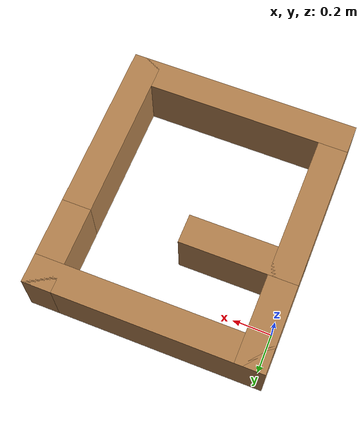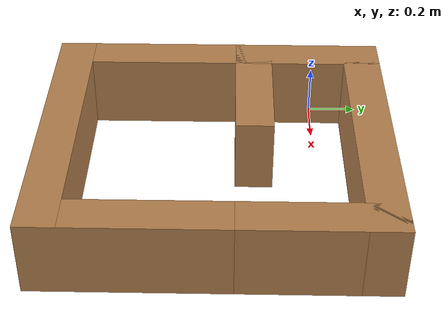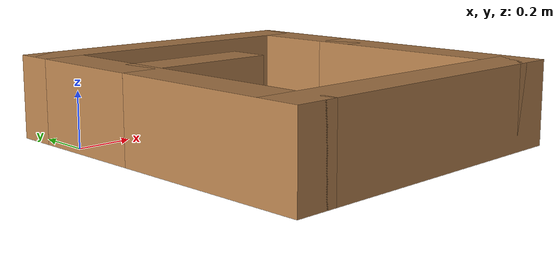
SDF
<?xml version='1.0'?>
<sdf version='1.7'>
  <model name='test3.world'>
    <pose>0.555 -0.4 0 0 -0 0</pose>
    <link name='Wall_1'>
      <collision name='Wall_1_Collision'>
        <geometry>
          <box>
            <size>1.2 0.15 0.3</size>
          </box>
        </geometry>
        <pose>0 0 0.15 0 -0 0</pose>
      </collision>
      <visual name='Wall_1_Visual'>
        <pose>0 0 0.15 0 -0 0</pose>
        <geometry>
          <box>
            <size>1.2 0.15 0.3</size>
          </box>
        </geometry>
        <material>
          <script>
            <uri>file://media/materials/scripts/gazebo.material</uri>
            <name>Gazebo/Wood</name>
          </script>
          <ambient>0.996078 0.47451 0.0196078 1</ambient>
        </material>
        <meta>
          <layer>0</layer>
        </meta>
      </visual>
      <pose>-0 -0.6 0 0 -0 0</pose>
    </link>
    <link name='Wall_11'>
      <collision name='Wall_11_Collision'>
        <geometry>
          <box>
            <size>0.9 0.15 0.3</size>
          </box>
        </geometry>
        <pose>0 0 0.15 0 -0 0</pose>
      </collision>
      <visual name='Wall_11_Visual'>
        <pose>0 0 0.15 0 -0 0</pose>
        <geometry>
          <box>
            <size>0.9 0.15 0.3</size>
          </box>
        </geometry>
        <material>
          <script>
            <uri>file://media/materials/scripts/gazebo.material</uri>
            <name>Gazebo/Wood</name>
          </script>
          <ambient>0.996078 0.47451 0.0196078 1</ambient>
        </material>
        <meta>
          <layer>0</layer>
        </meta>
      </visual>
      <pose>-0.525 -0.225 0 0 -0 -1.5708</pose>
    </link>
    <link name='Wall_13'>
      <collision name='Wall_13_Collision'>
        <geometry>
          <box>
            <size>0.6 0.15 0.3</size>
          </box>
        </geometry>
        <pose>0 0 0.15 0 -0 0</pose>
      </collision>
      <visual name='Wall_13_Visual'>
        <pose>0 0 0.15 0 -0 0</pose>
        <geometry>
          <box>
            <size>0.6 0.15 0.3</size>
          </box>
        </geometry>
        <material>
          <script>
            <uri>file://media/materials/scripts/gazebo.material</uri>
            <name>Gazebo/Wood</name>
          </script>
          <ambient>1 1 1 1</ambient>
        </material>
        <meta>
          <layer>0</layer>
        </meta>
      </visual>
      <pose>-0.3 0.15 0 0 -0 0</pose>
    </link>
    <link name='Wall_3'>
      <collision name='Wall_3_Collision'>
        <geometry>
          <box>
            <size>0.9 0.15 0.3</size>
          </box>
        </geometry>
        <pose>0 0 0.15 0 -0 0</pose>
      </collision>
      <visual name='Wall_3_Visual'>
        <pose>0 0 0.15 0 -0 0</pose>
        <geometry>
          <box>
            <size>0.9 0.15 0.3</size>
          </box>
        </geometry>
        <material>
          <script>
            <uri>file://media/materials/scripts/gazebo.material</uri>
            <name>Gazebo/Wood</name>
          </script>
          <ambient>0.996078 0.47451 0.0196078 1</ambient>
        </material>
        <meta>
          <layer>0</layer>
        </meta>
      </visual>
      <pose>0.525 -0.225 0 0 -0 1.5708</pose>
    </link>
    <link name='Wall_5'>
      <collision name='Wall_5_Collision'>
        <geometry>
          <box>
            <size>0.6 0.15 0.3</size>
          </box>
        </geometry>
        <pose>0 0 0.15 0 -0 0</pose>
      </collision>
      <visual name='Wall_5_Visual'>
        <pose>0 0 0.15 0 -0 0</pose>
        <geometry>
          <box>
            <size>0.6 0.15 0.3</size>
          </box>
        </geometry>
        <material>
          <script>
            <uri>file://media/materials/scripts/gazebo.material</uri>
            <name>Gazebo/Wood</name>
          </script>
          <ambient>0.996078 0.47451 0.0196078 1</ambient>
        </material>
        <meta>
          <layer>0</layer>
        </meta>
      </visual>
      <pose>0.525 0.375 0 0 -0 1.5708</pose>
    </link>
    <link name='Wall_7'>
      <collision name='Wall_7_Collision'>
        <geometry>
          <box>
            <size>1.2 0.15 0.3</size>
          </box>
        </geometry>
        <pose>0 0 0.15 0 -0 0</pose>
      </collision>
      <visual name='Wall_7_Visual'>
        <pose>0 0 0.15 0 -0 0</pose>
        <geometry>
          <box>
            <size>1.2 0.15 0.3</size>
          </box>
        </geometry>
        <material>
          <script>
            <uri>file://media/materials/scripts/gazebo.material</uri>
            <name>Gazebo/Wood</name>
          </script>
          <ambient>0.996078 0.47451 0.0196078 1</ambient>
        </material>
        <meta>
          <layer>0</layer>
        </meta>
      </visual>
      <pose>-0 0.6 0 0 -0 3.14159</pose>
    </link>
    <link name='Wall_9'>
      <collision name='Wall_9_Collision'>
        <geometry>
          <box>
            <size>0.6 0.15 0.3</size>
          </box>
        </geometry>
        <pose>0 0 0.15 0 -0 0</pose>
      </collision>
      <visual name='Wall_9_Visual'>
        <pose>0 0 0.15 0 -0 0</pose>
        <geometry>
          <box>
            <size>0.6 0.15 0.3</size>
          </box>
        </geometry>
        <material>
          <script>
            <uri>file://media/materials/scripts/gazebo.material</uri>
            <name>Gazebo/Wood</name>
          </script>
          <ambient>0.996078 0.47451 0.0196078 1</ambient>
        </material>
        <meta>
          <layer>0</layer>
        </meta>
      </visual>
      <pose>-0.525 0.375 0 0 -0 -1.5708</pose>
    </link>
    <static>1</static>
  </model>
</sdf>
